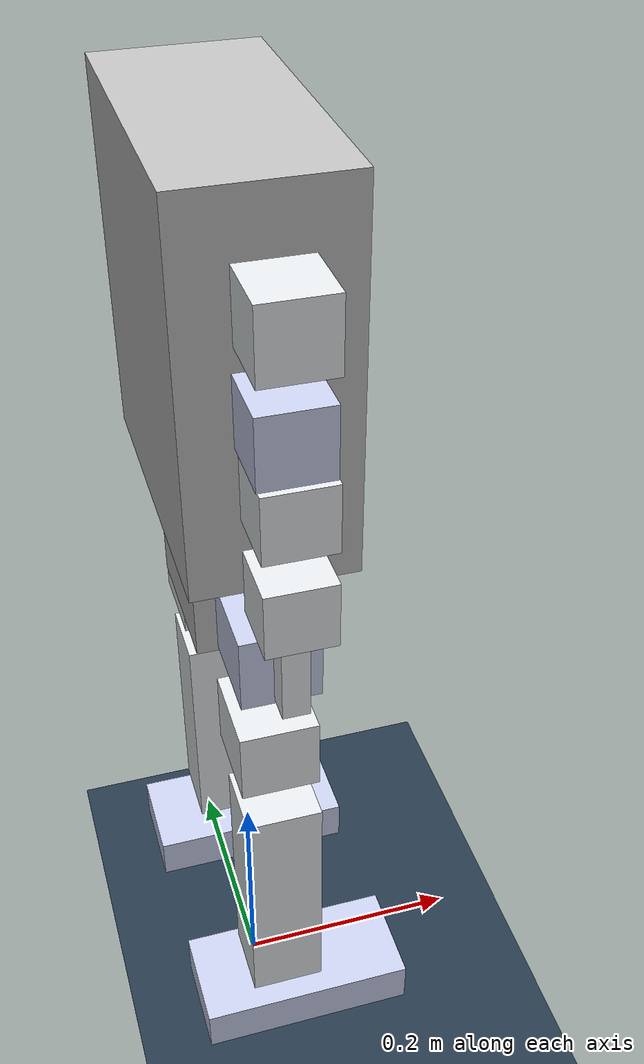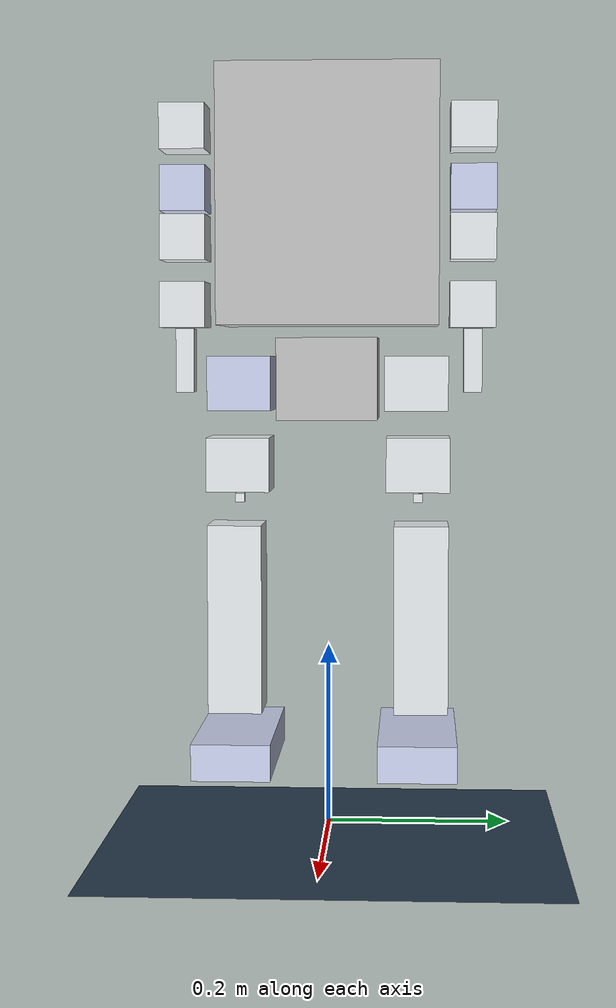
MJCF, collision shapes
<?xml version='1.0' encoding='utf-8'?>
<mujoco model="pi_12dof_release_v1">
  <compiler angle="radian" meshdir="../meshes/" eulerseq="zyx" />
  <option timestep="0.001" iterations="50" solver="PGS" gravity="0 0 -9.81">

  </option>
  <size njmax="500" nconmax="100" />

  <visual>
    <quality shadowsize="4096" />
    <map znear="0.05" />
  </visual>

  <default>
    <joint limited="true" damping="0.1" />
    <motor ctrllimited="true" />
    <geom condim="4" contype="1" conaffinity="15" solref="0.001 2" friction="0.90 0.2 0.2" />
    <equality solref="0.001 2" />
    <default class="visualgeom">
      <geom material="visualgeom" condim="1" contype="0" conaffinity="0" />
    </default>
    <default class="visualgeom2">
      <geom material="visualgeom2" condim="1" contype="0" conaffinity="0" />
    </default>
    <default class="obstacle">
      <geom material="obstacle" condim="3" contype="1" conaffinity="15" />
    </default>
  </default>
  <asset>
    <texture type="skybox" builtin="gradient" rgb1="0.3 0.5 0.7" rgb2="0 0 0" width="512" height="512" />
    <texture name="texplane" type="2d" builtin="checker" rgb1=".2 .3 .4" rgb2=".1 0.15 0.2" width="512" height="512" mark="cross" markrgb=".8 .8 .8" />
    <texture name="texplane2" type="2d" builtin="checker" rgb1="1 0.3137 0.1843" rgb2="0.0 0.30196 0.38039" width="512" height="512" mark="cross" markrgb=".8 .8 .8" />

    <material name="matplane" reflectance="0." texture="texplane" texrepeat="1 1" texuniform="true" />
    <material name="matplane2" reflectance="0.1" texture="texplane2" texrepeat="1 1" texuniform="true" />

    <material name="obstacle" rgba="0.9 0.6 0.2 1" />
    <material name="visualgeom" rgba="0.5 0.9 0.2 1" />
    <material name="visualgeom2" rgba="0.5 0.9 0.2 1" />

    <mesh name="l_ankle_roll_link" file="l_ankle_roll_link.STL" />

    <mesh name="r_ankle_roll_link" file="r_ankle_roll_link.STL" />

    <hfield name="hf0" nrow="200" ncol="200" size="10 5 0.2 .1" />
  </asset>
  <worldbody>
    <light directional="true" diffuse=".4 .4 .4" specular="0.1 0.1 0.1" pos="0 0 5.0" dir="0 0 -1" castshadow="false" />
    <light directional="true" diffuse=".6 .6 .6" specular="0.2 0.2 0.2" pos="0 0 4" dir="0 0 -1" />
    <geom name="ground" type="plane" size="0 0 1" pos="0.001 0 0" quat="1 0 0 0" material="matplane" condim="1" conaffinity="15" />

    <body name="waist_link" pos="0.0 0.0 0.55">
      <freejoint />
      <inertial pos="1.2e-06 3.4e-05 -0.049561" quat="0.705441 0.708762 0.00225734 0.0021095" mass="1.5958" diaginertia="0.00276674 0.00217031 0.00161694" />

      <geom size="0.045 0.055 0.045" pos="0 0 -0.05" type="box" rgba="0.75294 0.75294 0.75294 1" />
      <body name="base_link" pos="-0.028589 0.0015934 0.2183">
        <inertial pos="0.0259087 -0.0015142 -0.0707803" quat="0.999984 6.03449e-05 -0.00556212 -0.00066962" mass="4.27515" diaginertia="0.0576094 0.0457651 0.0212443" />
        <joint name="waist_joint" pos="0 0 0" axis="0 0 1" range="-0.5 0.5" armature="0.01" />

        <geom size="0.06 0.12 0.14" pos="0.03 0 -0.07" type="box" rgba="0.75294 0.75294 0.75294 1" />
        <site name="imu" size="0.01" pos="0.0 0 0.0" />
        <body name="l_shoulder_pitch_link" pos="0.028589 0.11796 0.0077">
          <inertial pos="0.0008423 0.032655 -1.71e-05" quat="0.519761 0.479719 -0.521419 0.477326" mass="0.31428" diaginertia="0.000198901 0.000180319 0.00014928" />
          <joint name="l_shoulder_pitch_joint" pos="0 0 0" axis="0 1 0" range="-3.14 3.14" armature="0.01" />

          <geom size="0.025 0.025 0.025" pos="0 0.04 0" type="box" rgba="0.89804 0.91765 0.92941 1" />
          <body name="l_shoulder_roll_link" pos="0.02325 0.04 0">
            <inertial pos="-0.0206921 0 -0.0556139" quat="0.701692 0.087342 0.087342 0.701692" mass="0.283088" diaginertia="0.0003344 0.000282954 0.000167246" />
            <joint name="l_shoulder_roll_joint" pos="0 0 0" axis="1 0 0" range="-3.14 3.14" armature="0.01" />

            <geom size="0.025 0.025 0.025" pos="-0.025 0 -0.067" type="box" rgba="0.79216 0.81961 0.93333 1" />
            <body name="l_upper_arm_link" pos="-0.023 0 -0.0935" quat="0.707123 0 0 0.707091">
              <inertial pos="0.0009891 0 -0.0297051" quat="0.70597 -0.0400713 -0.0400713 0.70597" mass="0.285277" diaginertia="0.0001622 0.000146837 0.000136163" />
              <joint name="l_upper_arm_joint" pos="0 0 0" axis="0 0 1" range="-3.14 3.14" armature="0.01" />

              <geom size="0.025 0.025 0.025" pos="0 0 -0.027" type="box" rgba="0.89804 0.91765 0.92941 1" />
              <body name="l_elbow_link" pos="-0.0005 0 -0.034">
                <inertial pos="0.0030579 0 -0.055614" quat="0.701692 0.087342 0.087342 0.701692" mass="0.28309" diaginertia="0.0003344 0.000282954 0.000167246" />
                <joint name="l_elbow_joint" pos="0 0 0" axis="1 0 0" range="-3.14 3.14" armature="0.01" />

                <geom size="0.025 0.025 0.025" pos="0 0 -0.067" type="box" rgba="0.89804 0.91765 0.92941 1" />
                <body name="l_wrist_link" pos="0.00075 0 -0.0935">
                  <inertial pos="0 0 -0.0275477" mass="0.0564393" diaginertia="2.85e-05 2.85e-05 6.3e-06" />
                  <joint name="l_wrist_joint" pos="0 0 0" axis="0 0 1" range="-3.14 3.14" armature="0.01" />

                  <geom size="0.01 0.01 0.035" pos="0 0 -0.035" type="box" rgba="0.89804 0.91765 0.92941 1" />
                </body>
              </body>
            </body>
          </body>
        </body>
        <body name="r_shoulder_pitch_link" pos="0.028589 -0.12114 0.0077">
          <inertial pos="0.0008423 -0.032655 1.71e-05" quat="0.477326 0.521419 -0.479719 0.519761" mass="0.31428" diaginertia="0.000198901 0.000180319 0.00014928" />
          <joint name="r_shoulder_pitch_joint" pos="0 0 0" axis="0 1 0" range="-3.14 3.14" armature="0.01" />

          <geom size="0.025 0.025 0.025" pos="0 -0.04 0" type="box" rgba="0.89804 0.91765 0.92941 1" />
          <body name="r_shoulder_roll_link" pos="0.02325 -0.04 0">
            <inertial pos="-0.0206921 0 -0.0556139" quat="0.701692 0.087342 0.087342 0.701692" mass="0.283088" diaginertia="0.0003344 0.000282954 0.000167246" />
            <joint name="r_shoulder_roll_joint" pos="0 0 0" axis="1 0 0" range="-3.14 3.14" armature="0.01" />

            <geom size="0.025 0.025 0.025" pos="-0.025 0 -0.067" type="box" rgba="0.79216 0.81961 0.93333 1" />
            <body name="r_upper_arm_link" pos="-0.023 0 -0.0935" quat="0.707123 0 0 0.707091">
              <inertial pos="0.0009891 0 -0.0297051" quat="0.70597 -0.0400713 -0.0400713 0.70597" mass="0.285277" diaginertia="0.0001622 0.000146837 0.000136163" />
              <joint name="r_upper_arm_joint" pos="0 0 0" axis="0 0 1" range="-3.14 3.14" armature="0.01" />

              <geom size="0.025 0.025 0.025" pos="0 0 -0.027" type="box" rgba="0.89804 0.91765 0.92941 1" />
              <body name="r_elbow_link" pos="-0.0005 0 -0.034">
                <inertial pos="0.0030579 0 -0.0556139" quat="0.701692 0.087342 0.087342 0.701692" mass="0.283088" diaginertia="0.0003344 0.000282954 0.000167246" />
                <joint name="r_elbow_joint" pos="0 0 0" axis="1 0 0" range="-3.14 3.14" armature="0.01" />

                <geom size="0.025 0.025 0.025" pos="0 0 -0.067" type="box" rgba="0.89804 0.91765 0.92941 1" />
                <body name="r_wrist_link" pos="0.00075 0 -0.0935">
                  <inertial pos="0 0 -0.0275477" mass="0.0564393" diaginertia="2.85e-05 2.85e-05 6.3e-06" />
                  <joint name="r_wrist_joint" pos="0 0 0" axis="0 0 1" range="-3.14 3.14" armature="0.01" />

                  <geom size="0.01 0.01 0.035" pos="0 0 -0.035" type="box" rgba="0.89804 0.91765 0.92941 1" />
                </body>
              </body>
            </body>
          </body>
        </body>
      </body>
      <body name="l_hip_pitch_link" pos="0 0.0575 -0.0553">
        <inertial pos="0.0001203 0.0399259 0" quat="0.5 0.5 -0.5 0.5" mass="0.665545" diaginertia="0.000473 0.0004708 0.0004388" />
        <joint name="l_hip_pitch_joint" pos="0 0 0" axis="0 1 0" range="-1.6 1.6" armature="0.01" />

        <geom size="0.03 0.035 0.03" pos="0 0.04 0" type="box" rgba="0.89804 0.91765 0.92941 1" />
        <body name="l_hip_roll_link" pos="0.02725 0.042 0">
          <inertial pos="-0.027804 0 -0.0756606" quat="0.706925 -0.0160325 -0.0160325 0.706925" mass="0.787115" diaginertia="0.0015491 0.00134125 0.000683248" />
          <joint name="l_hip_roll_joint" pos="0 0 0" axis="1 0 0" range="-0.25 0.6" armature="0.01" />

          <geom size="0.03 0.035 0.03" pos="-0.03 0 -0.09" type="box" rgba="0.89804 0.91765 0.92941 1" />
          <body name="l_thigh_link" pos="-0.02725 0 -0.123">
            <inertial pos="0 -0.0018622 -0.0367228" quat="0.511669 0.859183 0 0" mass="0.213246" diaginertia="0.0003791 0.000255961 0.000218239" />
            <joint name="l_thigh_joint" pos="0 0 0" axis="0 0 1" range="-1.2 1.2" armature="0.01" />

            <geom size="0.005 0.005 0.005" pos="0 0 -0.005" type="box" rgba="0.89804 0.91765 0.92941 1" />
            <body name="l_calf_link" pos="0 0.00375 -0.069">
              <inertial pos="0.0018338 -0.0030441 -0.0596583" quat="0.708524 -0.0142538 -0.00626723 0.705515" mass="1.45855" diaginertia="0.00562653 0.00555211 0.000779763" />
              <joint name="l_calf_joint" pos="0 0 0" axis="0 1 0" range="0 2.23" armature="0.01" />

              <geom size="0.03 0.03 0.105" pos="0 0 -0.07" type="box" rgba="0.89804 0.91765 0.92941 1" />
              <body name="l_ankle_pitch_link" pos="0 0.00475 -0.2">
                <inertial pos="0 -0.0085004 0" quat="0.5 0.5 0.5 0.5" mass="0.0089231" diaginertia="1e-06 1e-06 2e-07" />
                <joint name="l_ankle_pitch_joint" pos="0 0 0" axis="0 1 0" range="-1 0.75" armature="0.01" />

                <geom size="0.005 0.005 0.005" type="box" rgba="0.89804 0.91765 0.92941 1" />
                <body name="l_ankle_roll_link" pos="0.015125 -0.0085 0">
                  <inertial pos="0.002161 1.16e-05 -0.0230112" quat="0.000392252 0.713015 -0.000336013 0.701149" mass="0.403521" diaginertia="0.00118687 0.000997501 0.000221327" />
                  <joint name="l_ankle_roll_joint" pos="0 0 0" axis="1 0 0" range="-0.8 0.8" armature="0.01" />
                  <geom type="mesh" contype="0" conaffinity="0" group="1" density="0" rgba="0.79216 0.81961 0.93333 1" mesh="l_ankle_roll_link" />
                  <geom type="mesh" rgba="0.79216 0.81961 0.93333 1" mesh="l_ankle_roll_link" contype="0" conaffinity="0" />
                <geom name="l_foot_collision_box" type="box" size="0.09002 0.042524 0.01975" pos="0.001301 -0.000030 -0.01075" rgba="0.79216 0.81961 0.93333 1" condim="4" contype="1" conaffinity="15" friction="0.9 0.2 0.2" /></body>
              </body>
            </body>
          </body>
        </body>
      </body>
      <body name="r_hip_pitch_link" pos="0 -0.0575 -0.0553">
        <inertial pos="0.0001203 -0.039926 0" quat="0.5 0.5 -0.5 0.5" mass="0.66555" diaginertia="0.000473 0.0004708 0.0004388" />
        <joint name="r_hip_pitch_joint" pos="0 0 0" axis="0 1 0" range="-1.6 1.6" armature="0.01" />

        <geom size="0.03 0.035 0.03" pos="0 -0.04 0" type="box" rgba="0.79216 0.81961 0.93333 1" />
        <body name="r_hip_roll_link" pos="0.02725 -0.042 0">
          <inertial pos="-0.027804 0 -0.0756606" quat="0.706925 -0.0160325 -0.0160325 0.706925" mass="0.787115" diaginertia="0.0015491 0.00134125 0.000683248" />
          <joint name="r_hip_roll_joint" pos="0 0 0" axis="1 0 0" range="-0.6 0.25" armature="0.01" />

          <geom size="0.03 0.035 0.03" pos="-0.03 0 -0.09" type="box" rgba="0.89804 0.91765 0.92941 1" />
          <body name="r_thigh_link" pos="-0.02725 0 -0.123">
            <inertial pos="0 0.0018622 -0.0367228" quat="0.859183 0.511669 0 0" mass="0.213246" diaginertia="0.0003791 0.000255961 0.000218239" />
            <joint name="r_thigh_joint" pos="0 0 0" axis="0 0 1" range="-1.2 1.2" armature="0.01" />

            <geom size="0.005 0.005 0.005" pos="0 0 -0.005" type="box" rgba="0.89804 0.91765 0.92941 1" />
            <body name="r_calf_link" pos="0 -0.00375 -0.069">
              <inertial pos="0.0018341 0.0030218 -0.0596584" quat="0.704718 -0.00644281 -0.0140714 0.709318" mass="1.45856" diaginertia="0.00562648 0.0055521 0.00077982" />
              <joint name="r_calf_joint" pos="0 0 0" axis="0 1 0" range="0 2.23" armature="0.01" />

              <geom size="0.03 0.03 0.105" pos="0 0 -0.07" type="box" rgba="0.89804 0.91765 0.92941 1" />
              <body name="r_ankle_pitch_link" pos="0 -0.00475 -0.2">
                <inertial pos="0 0.0084996 0" quat="0.5 0.5 0.5 0.5" mass="0.0089231" diaginertia="1e-06 1e-06 2e-07" />
                <joint name="r_ankle_pitch_joint" pos="0 0 0" axis="0 1 0" range="-1 0.75" armature="0.01" />

                <geom size="0.005 0.005 0.005" type="box" rgba="0.89804 0.91765 0.92941 1" />
                <body name="r_ankle_roll_link" pos="0.015125 0.0085 0">
                  <inertial pos="0.002168 4.3e-06 -0.0230112" quat="9.8063e-05 0.713015 -8.40034e-05 0.701149" mass="0.403521" diaginertia="0.00118687 0.0009975 0.000221328" />
                  <joint name="r_ankle_roll_joint" pos="0 0 0" axis="1 0 0" range="-0.8 0.8" armature="0.01" />
                  <geom type="mesh" contype="0" conaffinity="0" group="1" density="0" rgba="0.89804 0.91765 0.92941 1" mesh="r_ankle_roll_link" />
                  <geom type="mesh" rgba="0.89804 0.91765 0.92941 1" mesh="r_ankle_roll_link" contype="0" conaffinity="0" />
                <geom name="r_foot_collision_box" type="box" size="0.09000 0.042500 0.01975" pos="0.001305 0 -0.01075" rgba="0.79216 0.81961 0.93333 1" condim="4" contype="1" conaffinity="15" friction="0.9 0.2 0.2" /></body>
              </body>
            </body>
          </body>
        </body>
      </body>
    </body>

  </worldbody>
  <actuator>
    <motor name="waist_joint" joint="waist_joint" gear="1" ctrllimited="true" ctrlrange="-24 24" />

    <motor name="l_shoulder_pitch_joint" joint="l_shoulder_pitch_joint" gear="1" ctrllimited="true" ctrlrange="-17 17" />
    <motor name="l_shoulder_roll_joint" joint="l_shoulder_roll_joint" gear="1" ctrllimited="true" ctrlrange="-17 17" />
    <motor name="l_upper_arm_joint" joint="l_upper_arm_joint" gear="1" ctrllimited="true" ctrlrange="-17 17" />
    <motor name="l_elbow_joint" joint="l_elbow_joint" gear="1" ctrllimited="true" ctrlrange="-17 17" />
    <motor name="l_wrist_joint" joint="l_wrist_joint" gear="1" ctrllimited="true" ctrlrange="-17 17" />

    <motor name="r_shoulder_pitch_joint" joint="r_shoulder_pitch_joint" gear="1" ctrllimited="true" ctrlrange="-17 17" />
    <motor name="r_shoulder_roll_joint" joint="r_shoulder_roll_joint" gear="1" ctrllimited="true" ctrlrange="-17 17" />
    <motor name="r_upper_arm_joint" joint="r_upper_arm_joint" gear="1" ctrllimited="true" ctrlrange="-17 17" />
    <motor name="r_elbow_joint" joint="r_elbow_joint" gear="1" ctrllimited="true" ctrlrange="-17 17" />
    <motor name="r_wrist_joint" joint="r_wrist_joint" gear="1" ctrllimited="true" ctrlrange="-17 17" />

    <motor name="l_hip_pitch_joint" joint="l_hip_pitch_joint" gear="1" ctrllimited="true" ctrlrange="-24 24" />
    <motor name="l_hip_roll_joint" joint="l_hip_roll_joint" gear="1" ctrllimited="true" ctrlrange="-24 24" />
    <motor name="l_thigh_joint" joint="l_thigh_joint" gear="1" ctrllimited="true" ctrlrange="-24 24" />
    <motor name="l_calf_joint" joint="l_calf_joint" gear="1" ctrllimited="true" ctrlrange="-24 24" />
    <motor name="l_ankle_pitch_joint" joint="l_ankle_pitch_joint" gear="1" ctrllimited="true" ctrlrange="-24 24" />
    <motor name="l_ankle_roll_joint" joint="l_ankle_roll_joint" gear="1" ctrllimited="true" ctrlrange="-24 24" />

    <motor name="r_hip_pitch_joint" joint="r_hip_pitch_joint" gear="1" ctrllimited="true" ctrlrange="-24 24" />
    <motor name="r_hip_roll_joint" joint="r_hip_roll_joint" gear="1" ctrllimited="true" ctrlrange="-24 24" />
    <motor name="r_thigh_joint" joint="r_thigh_joint" gear="1" ctrllimited="true" ctrlrange="-24 24" />
    <motor name="r_calf_joint" joint="r_calf_joint" gear="1" ctrllimited="true" ctrlrange="-24 24" />
    <motor name="r_ankle_pitch_joint" joint="r_ankle_pitch_joint" gear="1" ctrllimited="true" ctrlrange="-24 24" />
    <motor name="r_ankle_roll_joint" joint="r_ankle_roll_joint" gear="1" ctrllimited="true" ctrlrange="-24 24" />
  </actuator>

  <sensor>

    <actuatorpos name="r_hip_pitch_joint_p" actuator="r_hip_pitch_joint" user="13" />
    <actuatorpos name="r_hip_roll_joint_p" actuator="r_hip_roll_joint" user="13" />
    <actuatorpos name="r_thigh_joint_p" actuator="r_thigh_joint" user="13" />
    <actuatorpos name="r_calf_joint_p" actuator="r_calf_joint" user="13" />
    <actuatorpos name="r_ankle_pitch_joint_p" actuator="r_ankle_pitch_joint" user="13" />
    <actuatorpos name="r_ankle_roll_joint_p" actuator="r_ankle_roll_joint" user="13" />

    <actuatorpos name="l_hip_pitch_joint_p" actuator="l_hip_pitch_joint" user="13" />
    <actuatorpos name="l_hip_roll_joint_p" actuator="l_hip_roll_joint" user="13" />
    <actuatorpos name="l_thigh_joint_p" actuator="l_thigh_joint" user="13" />
    <actuatorpos name="l_calf_joint_p" actuator="l_calf_joint" user="13" />
    <actuatorpos name="l_ankle_pitch_joint_p" actuator="l_ankle_pitch_joint" user="13" />
    <actuatorpos name="l_ankle_roll_joint_p" actuator="l_ankle_roll_joint" user="13" />

    <actuatorpos name="r_shoulder_pitch_joint_p" actuator="r_shoulder_pitch_joint" user="13" />
    <actuatorpos name="r_shoulder_roll_joint_p" actuator="r_shoulder_roll_joint" user="13" />
    <actuatorpos name="r_upper_arm_joint_p" actuator="r_upper_arm_joint" user="13" />
    <actuatorpos name="r_elbow_joint_p" actuator="r_elbow_joint" user="13" />
    <actuatorpos name="r_wrist_joint_p" actuator="r_wrist_joint" user="13" />

    <actuatorpos name="l_shoulder_pitch_joint_p" actuator="l_shoulder_pitch_joint" user="13" />
    <actuatorpos name="l_shoulder_roll_joint_p" actuator="l_shoulder_roll_joint" user="13" />
    <actuatorpos name="l_upper_arm_joint_p" actuator="l_upper_arm_joint" user="13" />
    <actuatorpos name="l_elbow_joint_p" actuator="l_elbow_joint" user="13" />
    <actuatorpos name="l_wrist_joint_p" actuator="l_wrist_joint" user="13" />

    <actuatorvel name="r_hip_pitch_joint_v" actuator="r_hip_pitch_joint" user="13" noise="1e-3" />
    <actuatorvel name="r_hip_roll_joint_v" actuator="r_hip_roll_joint" user="13" noise="1e-3" />
    <actuatorvel name="r_thigh_joint_v" actuator="r_thigh_joint" user="13" noise="1e-3" />
    <actuatorvel name="r_calf_joint_v" actuator="r_calf_joint" user="13" noise="1e-3" />
    <actuatorvel name="r_ankle_pitch_joint_v" actuator="r_ankle_pitch_joint" user="13" noise="1e-3" />
    <actuatorvel name="r_ankle_roll_joint_v" actuator="r_ankle_roll_joint" user="13" noise="1e-3" />

    <actuatorvel name="l_hip_pitch_joint_v" actuator="l_hip_pitch_joint" user="13" noise="1e-3" />
    <actuatorvel name="l_hip_roll_joint_v" actuator="l_hip_roll_joint" user="13" noise="1e-3" />
    <actuatorvel name="l_thigh_joint_v" actuator="l_thigh_joint" user="13" noise="1e-3" />
    <actuatorvel name="l_calf_joint_v" actuator="l_calf_joint" user="13" noise="1e-3" />
    <actuatorvel name="l_ankle_pitch_joint_v" actuator="l_ankle_pitch_joint" user="13" noise="1e-3" />
    <actuatorvel name="l_ankle_roll_joint_v" actuator="l_ankle_roll_joint" user="13" noise="1e-3" />

    <actuatorpos name="r_shoulder_pitch_joint_v" actuator="r_shoulder_pitch_joint" user="13" />
    <actuatorpos name="r_shoulder_roll_joint_v" actuator="r_shoulder_roll_joint" user="13" />
    <actuatorpos name="r_upper_arm_joint_v" actuator="r_upper_arm_joint" user="13" />
    <actuatorpos name="r_elbow_joint_v" actuator="r_elbow_joint" user="13" />
    <actuatorpos name="r_wrist_joint_v" actuator="r_wrist_joint" user="13" />

    <actuatorpos name="l_shoulder_pitch_joint_v" actuator="l_shoulder_pitch_joint" user="13" />
    <actuatorpos name="l_shoulder_roll_joint_v" actuator="l_shoulder_roll_joint" user="13" />
    <actuatorpos name="l_upper_arm_joint_v" actuator="l_upper_arm_joint" user="13" />
    <actuatorpos name="l_elbow_joint_v" actuator="l_elbow_joint" user="13" />
    <actuatorpos name="l_wrist_joint_v" actuator="l_wrist_joint" user="13" />

    <actuatorfrc name="r_hip_pitch_joint_f" actuator="r_hip_pitch_joint" user="13" noise="1e-3" />
    <actuatorfrc name="r_hip_roll_joint_f" actuator="r_hip_roll_joint" user="13" noise="1e-3" />
    <actuatorfrc name="r_thigh_joint_f" actuator="r_thigh_joint" user="13" noise="1e-3" />
    <actuatorfrc name="r_calf_joint_f" actuator="r_calf_joint" user="13" noise="1e-3" />
    <actuatorfrc name="r_ankle_pitch_joint_f" actuator="r_ankle_pitch_joint" user="13" noise="1e-3" />
    <actuatorfrc name="r_ankle_roll_joint_f" actuator="r_ankle_roll_joint" user="13" noise="1e-3" />

    <actuatorfrc name="l_hip_pitch_joint_f" actuator="l_hip_pitch_joint" user="13" noise="1e-3" />
    <actuatorfrc name="l_hip_roll_joint_f" actuator="l_hip_roll_joint" user="13" noise="1e-3" />
    <actuatorfrc name="l_thigh_joint_f" actuator="l_thigh_joint" user="13" noise="1e-3" />
    <actuatorfrc name="l_calf_joint_f" actuator="l_calf_joint" user="13" noise="1e-3" />
    <actuatorfrc name="l_ankle_pitch_joint_f" actuator="l_ankle_pitch_joint" user="13" noise="1e-3" />
    <actuatorfrc name="l_ankle_roll_joint_f" actuator="l_ankle_roll_joint" user="13" noise="1e-3" />

    <actuatorpos name="r_shoulder_pitch_joint_f" actuator="r_shoulder_pitch_joint" user="13" />
    <actuatorpos name="r_shoulder_roll_joint_f" actuator="r_shoulder_roll_joint" user="13" />
    <actuatorpos name="r_upper_arm_joint_f" actuator="r_upper_arm_joint" user="13" />
    <actuatorpos name="r_elbow_joint_f" actuator="r_elbow_joint" user="13" />
    <actuatorpos name="r_wrist_joint_f" actuator="r_wrist_joint" user="13" />

    <actuatorpos name="l_shoulder_pitch_joint_f" actuator="l_shoulder_pitch_joint" user="13" />
    <actuatorpos name="l_shoulder_roll_joint_f" actuator="l_shoulder_roll_joint" user="13" />
    <actuatorpos name="l_upper_arm_joint_f" actuator="l_upper_arm_joint" user="13" />
    <actuatorpos name="l_elbow_joint_f" actuator="l_elbow_joint" user="13" />
    <actuatorpos name="l_wrist_joint_f" actuator="l_wrist_joint" user="13" />

    <framequat name="orientation" objtype="site" noise="0.001" objname="imu" />
    <framepos name="position" objtype="site" noise="0.001" objname="imu" />
    <gyro name="angular-velocity" site="imu" noise="0.005" cutoff="34.9" />
    <velocimeter name="linear-velocity" site="imu" noise="0.001" cutoff="30" />
    <accelerometer name="linear-acceleration" site="imu" noise="0.005" cutoff="157" />
    <magnetometer name="magnetometer" site="imu" />

  </sensor>
</mujoco>
